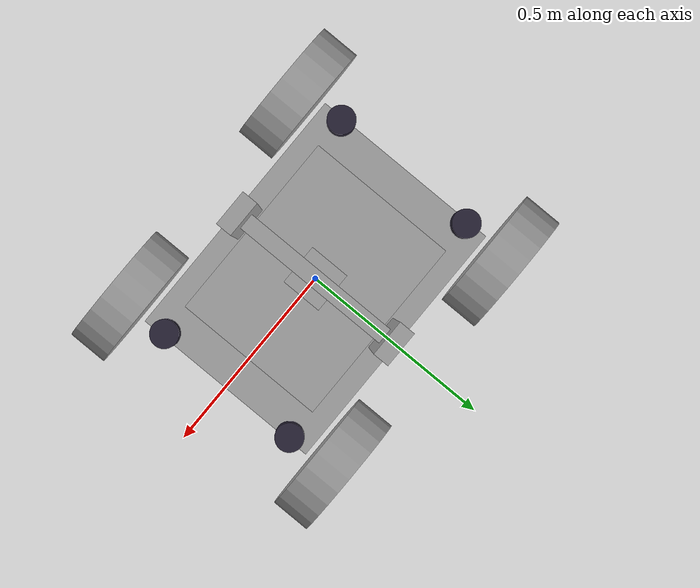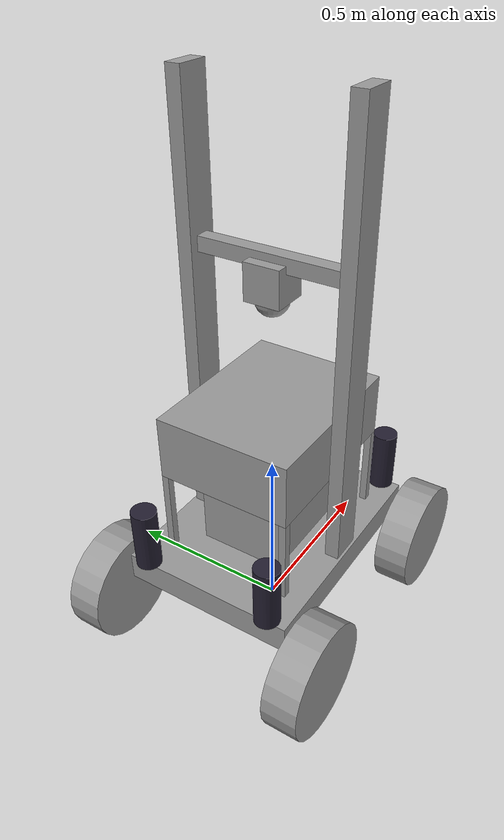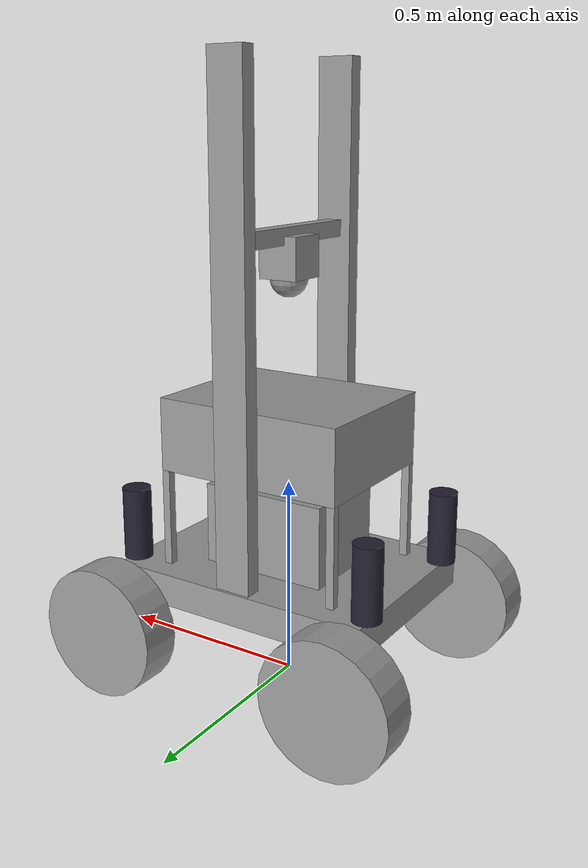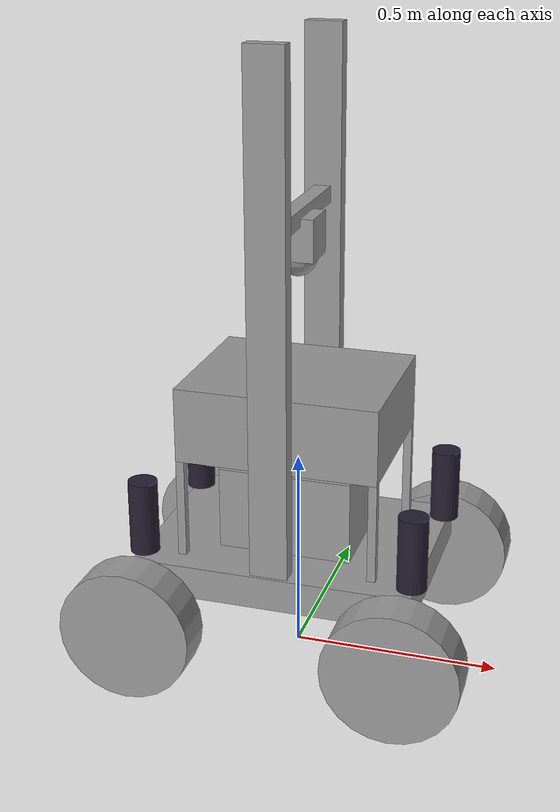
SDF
<?xml version='1.0'?>
<sdf version='1.7'>
  <model name='rover_v4'>

    <link name='link_base'>
      <inertial>
        <mass>53.064</mass>
        <inertia>
          <ixx>1.1118</ixx>
          <ixy>0</ixy>
          <ixz>0</ixz>
          <iyy>2.01334</iyy>
          <iyz>0</iyz>
          <izz>3.06854</izz>
        </inertia>
        <pose>0 0 0 0 -0 0</pose>
      </inertial>
      <pose>0 0 0.26 0 -0 0</pose>
      <gravity>1</gravity>
      <self_collide>0</self_collide>
      <kinematic>0</kinematic>
      <enable_wind>0</enable_wind>
      <visual name='ModelPreview_6::link_base::visual_8'>
        <pose>0.23 -0.18 0.16 0 -0 0</pose>
        <geometry>
          <box>
            <size>0.02 0.02 0.24</size>
          </box>
        </geometry>
        <material>
          <lighting>1</lighting>
          <script>
            <uri>file://media/materials/scripts/gazebo.material</uri>
            <name>Gazebo/Grey</name>
          </script>
          <shader type='pixel'>
            <normal_map>__default__</normal_map>
          </shader>
          <ambient>0.698 0.698 0.698 1</ambient>
          <diffuse>0.698 0.698 0.698 1</diffuse>
          <specular>0.01 0.01 0.01 1</specular>
          <emissive>0 0 0 1</emissive>
        </material>
        <transparency>0</transparency>
        <cast_shadows>1</cast_shadows>
      </visual>
      <visual name='ModelPreview_0::link_base::visual_3'>
        <pose>-0.325 -0.19 0.13 0 -0 0</pose>
        <geometry>
          <cylinder>
            <radius>0.035</radius>
            <length>0.18</length>
          </cylinder>
        </geometry>
        <material>
          <lighting>1</lighting>
          <script>
            <uri>file://media/materials/scripts/gazebo.material</uri>
            <name>Gazebo/Grey</name>
          </script>
          <shader type='pixel'>
            <normal_map>__default__</normal_map>
          </shader>
          <ambient>0.141 0.122 0.192 1</ambient>
          <diffuse>0.141 0.122 0.192 1</diffuse>
          <specular>0.01 0.01 0.01 1</specular>
          <emissive>0 0 0 1</emissive>
        </material>
        <transparency>0</transparency>
        <cast_shadows>1</cast_shadows>
      </visual>
      <visual name='ModelPreview_0::link_base::visual_4'>
        <pose>-0.325 0.19 0.13 0 -0 0</pose>
        <geometry>
          <cylinder>
            <radius>0.035</radius>
            <length>0.18</length>
          </cylinder>
        </geometry>
        <material>
          <lighting>1</lighting>
          <script>
            <uri>file://media/materials/scripts/gazebo.material</uri>
            <name>Gazebo/Grey</name>
          </script>
          <shader type='pixel'>
            <normal_map>__default__</normal_map>
          </shader>
          <ambient>0.141 0.122 0.192 1</ambient>
          <diffuse>0.141 0.122 0.192 1</diffuse>
          <specular>0.01 0.01 0.01 1</specular>
          <emissive>0 0 0 1</emissive>
        </material>
        <transparency>0</transparency>
        <cast_shadows>1</cast_shadows>
      </visual>
      <visual name='visual'>
        <pose>0 0 0 0 -0 0</pose>
        <geometry>
          <box>
            <size>0.67 0.495 0.08</size>
          </box>
        </geometry>
        <material>
          <lighting>1</lighting>
          <script>
            <uri>file://media/materials/scripts/gazebo.material</uri>
            <name>Gazebo/Grey</name>
          </script>
          <shader type='pixel'>
            <normal_map>__default__</normal_map>
          </shader>
          <ambient>0.698 0.698 0.698 1</ambient>
          <diffuse>0.7 0.7 0.7 1</diffuse>
          <specular>0.01 0.01 0.01 1</specular>
          <emissive>0 0 0 1</emissive>
        </material>
        <transparency>0</transparency>
        <cast_shadows>1</cast_shadows>
      </visual>
      <visual name='ModelPreview_9::link_base::visual_9'>
        <pose>0 0 0.14 0 -0 0</pose>
        <geometry>
          <box>
            <size>0.32 0.24 0.2</size>
          </box>
        </geometry>
        <material>
          <lighting>1</lighting>
          <script>
            <uri>file://media/materials/scripts/gazebo.material</uri>
            <name>Gazebo/Grey</name>
          </script>
          <shader type='pixel'>
            <normal_map>__default__</normal_map>
          </shader>
          <ambient>1 1 1 1</ambient>
          <diffuse>1 1 1 1</diffuse>
          <specular>0.01 0.01 0.01 1</specular>
          <emissive>0 0 0 1</emissive>
        </material>
        <transparency>0</transparency>
        <cast_shadows>1</cast_shadows>
      </visual>
      <visual name='ModelPreview_0::link_base::visual_1'>
        <pose>0.325 0.19 0.13 0 -0 0</pose>
        <geometry>
          <cylinder>
            <radius>0.035</radius>
            <length>0.18</length>
          </cylinder>
        </geometry>
        <material>
          <lighting>1</lighting>
          <script>
            <uri>file://media/materials/scripts/gazebo.material</uri>
            <name>Gazebo/Grey</name>
          </script>
          <shader type='pixel'>
            <normal_map>__default__</normal_map>
          </shader>
          <ambient>0.141 0.122 0.192 1</ambient>
          <diffuse>0.141 0.122 0.192 1</diffuse>
          <specular>0.01 0.01 0.01 1</specular>
          <emissive>0 0 0 1</emissive>
        </material>
        <transparency>0</transparency>
        <cast_shadows>1</cast_shadows>
      </visual>
      <visual name='ModelPreview_0::link_base::visual_2'>
        <pose>0.325 -0.19 0.13 0 -0 0</pose>
        <geometry>
          <cylinder>
            <radius>0.035</radius>
            <length>0.18</length>
          </cylinder>
        </geometry>
        <material>
          <lighting>1</lighting>
          <script>
            <uri>file://media/materials/scripts/gazebo.material</uri>
            <name>Gazebo/Grey</name>
          </script>
          <shader type='pixel'>
            <normal_map>__default__</normal_map>
          </shader>
          <ambient>0.141 0.122 0.192 1</ambient>
          <diffuse>0.141 0.122 0.192 1</diffuse>
          <specular>0.01 0.01 0.01 1</specular>
          <emissive>0 0 0 1</emissive>
        </material>
        <transparency>0</transparency>
        <cast_shadows>1</cast_shadows>
      </visual>
      <visual name='ModelPreview_6::link_base::visual_5'>
        <pose>0.23 0.18 0.16 0 -0 0</pose>
        <geometry>
          <box>
            <size>0.02 0.02 0.24</size>
          </box>
        </geometry>
        <material>
          <lighting>1</lighting>
          <script>
            <uri>file://media/materials/scripts/gazebo.material</uri>
            <name>Gazebo/Grey</name>
          </script>
          <shader type='pixel'>
            <normal_map>__default__</normal_map>
          </shader>
          <ambient>0.698 0.698 0.698 1</ambient>
          <diffuse>0.698 0.698 0.698 1</diffuse>
          <specular>0.01 0.01 0.01 1</specular>
          <emissive>0 0 0 1</emissive>
        </material>
        <transparency>0</transparency>
        <cast_shadows>1</cast_shadows>
      </visual>
      <visual name='ModelPreview_6::link_base::visual_6'>
        <pose>-0.23 0.18 0.16 0 -0 0</pose>
        <geometry>
          <box>
            <size>0.02 0.02 0.24</size>
          </box>
        </geometry>
        <material>
          <lighting>1</lighting>
          <script>
            <uri>file://media/materials/scripts/gazebo.material</uri>
            <name>Gazebo/Grey</name>
          </script>
          <shader type='pixel'>
            <normal_map>__default__</normal_map>
          </shader>
          <ambient>0.698 0.698 0.698 1</ambient>
          <diffuse>0.698 0.698 0.698 1</diffuse>
          <specular>0.01 0.01 0.01 1</specular>
          <emissive>0 0 0 1</emissive>
        </material>
        <transparency>0</transparency>
        <cast_shadows>1</cast_shadows>
      </visual>
      <visual name='ModelPreview_6::link_base::visual_7'>
        <pose>-0.23 -0.18 0.16 0 -0 0</pose>
        <geometry>
          <box>
            <size>0.02 0.02 0.24</size>
          </box>
        </geometry>
        <material>
          <lighting>1</lighting>
          <script>
            <uri>file://media/materials/scripts/gazebo.material</uri>
            <name>Gazebo/Grey</name>
          </script>
          <shader type='pixel'>
            <normal_map>__default__</normal_map>
          </shader>
          <ambient>0.698 0.698 0.698 1</ambient>
          <diffuse>0.698 0.698 0.698 1</diffuse>
          <specular>0.01 0.01 0.01 1</specular>
          <emissive>0 0 0 1</emissive>
        </material>
        <transparency>0</transparency>
        <cast_shadows>1</cast_shadows>
      </visual>
      <collision name='collision'>
        <laser_retro>0</laser_retro>
        <max_contacts>10</max_contacts>
        <pose>0 0 0 0 -0 0</pose>
        <geometry>
          <box>
            <size>0.67 0.495 0.08</size>
          </box>
        </geometry>
        <surface>
          <friction>
            <ode>
              <mu>1</mu>
              <mu2>1</mu2>
              <fdir1>0 0 0</fdir1>
              <slip1>0</slip1>
              <slip2>0</slip2>
            </ode>
            <torsional>
              <coefficient>1</coefficient>
              <patch_radius>0</patch_radius>
              <surface_radius>0</surface_radius>
              <use_patch_radius>1</use_patch_radius>
              <ode>
                <slip>0</slip>
              </ode>
            </torsional>
          </friction>
          <bounce>
            <restitution_coefficient>0</restitution_coefficient>
            <threshold>1e+06</threshold>
          </bounce>
          <contact>
            <collide_without_contact>0</collide_without_contact>
            <collide_without_contact_bitmask>1</collide_without_contact_bitmask>
            <collide_bitmask>1</collide_bitmask>
            <ode>
              <soft_cfm>0</soft_cfm>
              <soft_erp>0.2</soft_erp>
              <kp>1e+13</kp>
              <kd>1</kd>
              <max_vel>0.01</max_vel>
              <min_depth>0</min_depth>
            </ode>
            <bullet>
              <split_impulse>1</split_impulse>
              <split_impulse_penetration_threshold>-0.01</split_impulse_penetration_threshold>
              <soft_cfm>0</soft_cfm>
              <soft_erp>0.2</soft_erp>
              <kp>1e+13</kp>
              <kd>1</kd>
            </bullet>
          </contact>
        </surface>
      </collision>
    </link>
    <link name='link_front_left_wheel'>
      <inertial>
        <mass>5.62973</mass>
        <inertia>
          <ixx>0.0407217</ixx>
          <ixy>0</ixy>
          <ixz>0</ixz>
          <iyy>0.0407217</iyy>
          <iyz>0</iyz>
          <izz>0.0720606</izz>
        </inertia>
        <pose>0 0 0 0 -0 0</pose>
      </inertial>
      <pose>0.315 0.315 0.16 1.571 -0 0</pose>
      <gravity>1</gravity>
      <self_collide>0</self_collide>
      <kinematic>0</kinematic>
      <enable_wind>0</enable_wind>
      <visual name='visual'>
        <pose>0 0 0 0 -0 0</pose>
        <geometry>
          <cylinder>
            <radius>0.16</radius>
            <length>0.1</length>
          </cylinder>
        </geometry>
        <material>
          <lighting>1</lighting>
          <script>
            <uri>file://media/materials/scripts/gazebo.material</uri>
            <name>Gazebo/Grey</name>
          </script>
          <shader type='pixel'>
            <normal_map>__default__</normal_map>
          </shader>
          <ambient>0.298 0.298 0.298 1</ambient>
          <diffuse>0.529 0.537 0.522 1</diffuse>
          <specular>0.01 0.01 0.01 1</specular>
          <emissive>0 0 0 1</emissive>
        </material>
        <transparency>0</transparency>
        <cast_shadows>1</cast_shadows>
      </visual>
      <collision name='collision'>
        <laser_retro>0</laser_retro>
        <max_contacts>10</max_contacts>
        <pose>0 0 0 0 -0 0</pose>
        <geometry>
          <cylinder>
            <radius>0.16</radius>
            <length>0.1</length>
          </cylinder>
        </geometry>
        <surface>
          <friction>
            <ode>
              <mu>1</mu>
              <mu2>1</mu2>
              <fdir1>0 0 0</fdir1>
              <slip1>0</slip1>
              <slip2>0</slip2>
            </ode>
            <torsional>
              <coefficient>1</coefficient>
              <patch_radius>0</patch_radius>
              <surface_radius>0</surface_radius>
              <use_patch_radius>1</use_patch_radius>
              <ode>
                <slip>0</slip>
              </ode>
            </torsional>
          </friction>
          <bounce>
            <restitution_coefficient>0</restitution_coefficient>
            <threshold>1e+06</threshold>
          </bounce>
          <contact>
            <collide_without_contact>0</collide_without_contact>
            <collide_without_contact_bitmask>1</collide_without_contact_bitmask>
            <collide_bitmask>1</collide_bitmask>
            <ode>
              <soft_cfm>0</soft_cfm>
              <soft_erp>0.2</soft_erp>
              <kp>1e+13</kp>
              <kd>1</kd>
              <max_vel>0.01</max_vel>
              <min_depth>0</min_depth>
            </ode>
            <bullet>
              <split_impulse>1</split_impulse>
              <split_impulse_penetration_threshold>-0.01</split_impulse_penetration_threshold>
              <soft_cfm>0</soft_cfm>
              <soft_erp>0.2</soft_erp>
              <kp>1e+13</kp>
              <kd>1</kd>
            </bullet>
          </contact>
        </surface>
      </collision>
    </link>
    <link name='link_back_left_wheel'>
      <inertial>
        <mass>5.62973</mass>
        <inertia>
          <ixx>0.0407217</ixx>
          <ixy>0</ixy>
          <ixz>0</ixz>
          <iyy>0.0407217</iyy>
          <iyz>0</iyz>
          <izz>0.0720606</izz>
        </inertia>
        <pose>0 0 0 0 -0 0</pose>
      </inertial>
      <pose>-0.315 0.315 0.16 1.571 -0 0</pose>
      <gravity>1</gravity>
      <self_collide>0</self_collide>
      <kinematic>0</kinematic>
      <enable_wind>0</enable_wind>
      <visual name='visual'>
        <pose>0 0 0 0 -0 0</pose>
        <geometry>
          <cylinder>
            <radius>0.16</radius>
            <length>0.1</length>
          </cylinder>
        </geometry>
        <material>
          <lighting>1</lighting>
          <script>
            <uri>file://media/materials/scripts/gazebo.material</uri>
            <name>Gazebo/Grey</name>
          </script>
          <shader type='pixel'>
            <normal_map>__default__</normal_map>
          </shader>
          <ambient>0.298 0.298 0.298 1</ambient>
          <diffuse>0.529 0.537 0.522 1</diffuse>
          <specular>0.01 0.01 0.01 1</specular>
          <emissive>0 0 0 1</emissive>
        </material>
        <transparency>0</transparency>
        <cast_shadows>1</cast_shadows>
      </visual>
      <collision name='collision'>
        <laser_retro>0</laser_retro>
        <max_contacts>10</max_contacts>
        <pose>0 0 0 0 -0 0</pose>
        <geometry>
          <cylinder>
            <radius>0.16</radius>
            <length>0.1</length>
          </cylinder>
        </geometry>
        <surface>
          <friction>
            <ode>
              <mu>1</mu>
              <mu2>1</mu2>
              <fdir1>0 0 0</fdir1>
              <slip1>0</slip1>
              <slip2>0</slip2>
            </ode>
            <torsional>
              <coefficient>1</coefficient>
              <patch_radius>0</patch_radius>
              <surface_radius>0</surface_radius>
              <use_patch_radius>1</use_patch_radius>
              <ode>
                <slip>0</slip>
              </ode>
            </torsional>
          </friction>
          <bounce>
            <restitution_coefficient>0</restitution_coefficient>
            <threshold>1e+06</threshold>
          </bounce>
          <contact>
            <collide_without_contact>0</collide_without_contact>
            <collide_without_contact_bitmask>1</collide_without_contact_bitmask>
            <collide_bitmask>1</collide_bitmask>
            <ode>
              <soft_cfm>0</soft_cfm>
              <soft_erp>0.2</soft_erp>
              <kp>1e+13</kp>
              <kd>1</kd>
              <max_vel>0.01</max_vel>
              <min_depth>0</min_depth>
            </ode>
            <bullet>
              <split_impulse>1</split_impulse>
              <split_impulse_penetration_threshold>-0.01</split_impulse_penetration_threshold>
              <soft_cfm>0</soft_cfm>
              <soft_erp>0.2</soft_erp>
              <kp>1e+13</kp>
              <kd>1</kd>
            </bullet>
          </contact>
        </surface>
      </collision>
    </link>
    <link name='link_front_right_wheel'>
      <inertial>
        <mass>5.62973</mass>
        <inertia>
          <ixx>0.0407217</ixx>
          <ixy>0</ixy>
          <ixz>0</ixz>
          <iyy>0.0407217</iyy>
          <iyz>0</iyz>
          <izz>0.0720606</izz>
        </inertia>
        <pose>0 0 0 0 -0 0</pose>
      </inertial>
      <pose>0.315 -0.315 0.16 1.571 -0 0</pose>
      <gravity>1</gravity>
      <self_collide>0</self_collide>
      <kinematic>0</kinematic>
      <enable_wind>0</enable_wind>
      <visual name='visual'>
        <pose>0 0 0 0 -0 0</pose>
        <geometry>
          <cylinder>
            <radius>0.16</radius>
            <length>0.1</length>
          </cylinder>
        </geometry>
        <material>
          <lighting>1</lighting>
          <script>
            <uri>file://media/materials/scripts/gazebo.material</uri>
            <name>Gazebo/Grey</name>
          </script>
          <shader type='pixel'>
            <normal_map>__default__</normal_map>
          </shader>
          <ambient>0.298 0.298 0.298 1</ambient>
          <diffuse>0.529 0.537 0.522 1</diffuse>
          <specular>0.01 0.01 0.01 1</specular>
          <emissive>0 0 0 1</emissive>
        </material>
        <transparency>0</transparency>
        <cast_shadows>1</cast_shadows>
      </visual>
      <collision name='collision'>
        <laser_retro>0</laser_retro>
        <max_contacts>10</max_contacts>
        <pose>0 0 0 0 -0 0</pose>
        <geometry>
          <cylinder>
            <radius>0.16</radius>
            <length>0.1</length>
          </cylinder>
        </geometry>
        <surface>
          <friction>
            <ode>
              <mu>1</mu>
              <mu2>1</mu2>
              <fdir1>0 0 0</fdir1>
              <slip1>0</slip1>
              <slip2>0</slip2>
            </ode>
            <torsional>
              <coefficient>1</coefficient>
              <patch_radius>0</patch_radius>
              <surface_radius>0</surface_radius>
              <use_patch_radius>1</use_patch_radius>
              <ode>
                <slip>0</slip>
              </ode>
            </torsional>
          </friction>
          <bounce>
            <restitution_coefficient>0</restitution_coefficient>
            <threshold>1e+06</threshold>
          </bounce>
          <contact>
            <collide_without_contact>0</collide_without_contact>
            <collide_without_contact_bitmask>1</collide_without_contact_bitmask>
            <collide_bitmask>1</collide_bitmask>
            <ode>
              <soft_cfm>0</soft_cfm>
              <soft_erp>0.2</soft_erp>
              <kp>1e+13</kp>
              <kd>1</kd>
              <max_vel>0.01</max_vel>
              <min_depth>0</min_depth>
            </ode>
            <bullet>
              <split_impulse>1</split_impulse>
              <split_impulse_penetration_threshold>-0.01</split_impulse_penetration_threshold>
              <soft_cfm>0</soft_cfm>
              <soft_erp>0.2</soft_erp>
              <kp>1e+13</kp>
              <kd>1</kd>
            </bullet>
          </contact>
        </surface>
      </collision>
    </link>
    <link name='link_back_right_wheel'>
      <inertial>
        <mass>5.62973</mass>
        <inertia>
          <ixx>0.0407217</ixx>
          <ixy>0</ixy>
          <ixz>0</ixz>
          <iyy>0.0407217</iyy>
          <iyz>0</iyz>
          <izz>0.0720606</izz>
        </inertia>
        <pose>0 0 0 0 -0 0</pose>
      </inertial>
      <pose>-0.315 -0.315 0.16 1.571 -0 0</pose>
      <gravity>1</gravity>
      <self_collide>0</self_collide>
      <kinematic>0</kinematic>
      <enable_wind>0</enable_wind>
      <visual name='visual'>
        <pose>0 0 0 0 -0 0</pose>
        <geometry>
          <cylinder>
            <radius>0.16</radius>
            <length>0.1</length>
          </cylinder>
        </geometry>
        <material>
          <lighting>1</lighting>
          <script>
            <uri>file://media/materials/scripts/gazebo.material</uri>
            <name>Gazebo/Grey</name>
          </script>
          <shader type='pixel'>
            <normal_map>__default__</normal_map>
          </shader>
          <ambient>0.298 0.298 0.298 1</ambient>
          <diffuse>0.529 0.537 0.522 1</diffuse>
          <specular>0.01 0.01 0.01 1</specular>
          <emissive>0 0 0 1</emissive>
        </material>
        <transparency>0</transparency>
        <cast_shadows>1</cast_shadows>
      </visual>
      <collision name='collision'>
        <laser_retro>0</laser_retro>
        <max_contacts>10</max_contacts>
        <pose>0 0 0 0 -0 0</pose>
        <geometry>
          <cylinder>
            <radius>0.16</radius>
            <length>0.1</length>
          </cylinder>
        </geometry>
        <surface>
          <friction>
            <ode>
              <mu>1</mu>
              <mu2>1</mu2>
              <fdir1>0 0 0</fdir1>
              <slip1>0</slip1>
              <slip2>0</slip2>
            </ode>
            <torsional>
              <coefficient>1</coefficient>
              <patch_radius>0</patch_radius>
              <surface_radius>0</surface_radius>
              <use_patch_radius>1</use_patch_radius>
              <ode>
                <slip>0</slip>
              </ode>
            </torsional>
          </friction>
          <bounce>
            <restitution_coefficient>0</restitution_coefficient>
            <threshold>1e+06</threshold>
          </bounce>
          <contact>
            <collide_without_contact>0</collide_without_contact>
            <collide_without_contact_bitmask>1</collide_without_contact_bitmask>
            <collide_bitmask>1</collide_bitmask>
            <ode>
              <soft_cfm>0</soft_cfm>
              <soft_erp>0.2</soft_erp>
              <kp>1e+13</kp>
              <kd>1</kd>
              <max_vel>0.01</max_vel>
              <min_depth>0</min_depth>
            </ode>
            <bullet>
              <split_impulse>1</split_impulse>
              <split_impulse_penetration_threshold>-0.01</split_impulse_penetration_threshold>
              <soft_cfm>0</soft_cfm>
              <soft_erp>0.2</soft_erp>
              <kp>1e+13</kp>
              <kd>1</kd>
            </bullet>
          </contact>
        </surface>
      </collision>
    </link>
    <link name='link_controller_box'>
      <inertial>
        <mass>3.2832</mass>
        <inertia>
          <ixx>0.0483725</ixx>
          <ixy>0</ixy>
          <ixz>0</ixz>
          <iyy>0.0719021</iyy>
          <iyz>0</iyz>
          <izz>0.102545</izz>
        </inertia>
        <pose>0 0 0 0 -0 0</pose>
      </inertial>
      <pose>0 0 0.63 0 -0 0</pose>
      <gravity>1</gravity>
      <self_collide>0</self_collide>
      <kinematic>0</kinematic>
      <enable_wind>0</enable_wind>
      <visual name='visual'>
        <pose>0 0 0 0 -0 0</pose>
        <geometry>
          <box>
            <size>0.48 0.38 0.18</size>
          </box>
        </geometry>
        <material>
          <lighting>1</lighting>
          <script>
            <uri>file://media/materials/scripts/gazebo.material</uri>
            <name>Gazebo/Grey</name>
          </script>
          <shader type='pixel'>
            <normal_map>__default__</normal_map>
          </shader>
          <ambient>0.698 0.698 0.698 1</ambient>
          <diffuse>0.7 0.7 0.7 1</diffuse>
          <specular>0.01 0.01 0.01 1</specular>
          <emissive>0 0 0 1</emissive>
        </material>
        <transparency>0</transparency>
        <cast_shadows>1</cast_shadows>
      </visual>
      <collision name='collision'>
        <laser_retro>0</laser_retro>
        <max_contacts>10</max_contacts>
        <pose>0 0 0 0 -0 0</pose>
        <geometry>
          <box>
            <size>0.48 0.38 0.18</size>
          </box>
        </geometry>
        <surface>
          <friction>
            <ode>
              <mu>1</mu>
              <mu2>1</mu2>
              <fdir1>0 0 0</fdir1>
              <slip1>0</slip1>
              <slip2>0</slip2>
            </ode>
            <torsional>
              <coefficient>1</coefficient>
              <patch_radius>0</patch_radius>
              <surface_radius>0</surface_radius>
              <use_patch_radius>1</use_patch_radius>
              <ode>
                <slip>0</slip>
              </ode>
            </torsional>
          </friction>
          <bounce>
            <restitution_coefficient>0</restitution_coefficient>
            <threshold>1e+06</threshold>
          </bounce>
          <contact>
            <collide_without_contact>0</collide_without_contact>
            <collide_without_contact_bitmask>1</collide_without_contact_bitmask>
            <collide_bitmask>1</collide_bitmask>
            <ode>
              <soft_cfm>0</soft_cfm>
              <soft_erp>0.2</soft_erp>
              <kp>1e+13</kp>
              <kd>1</kd>
              <max_vel>0.01</max_vel>
              <min_depth>0</min_depth>
            </ode>
            <bullet>
              <split_impulse>1</split_impulse>
              <split_impulse_penetration_threshold>-0.01</split_impulse_penetration_threshold>
              <soft_cfm>0</soft_cfm>
              <soft_erp>0.2</soft_erp>
              <kp>1e+13</kp>
              <kd>1</kd>
            </bullet>
          </contact>
        </surface>
      </collision>
    </link>
    <link name='link_lidar_side_supports'>
      <inertial>
        <mass>3.0024</mass>
        <inertia>
          <ixx>0.360388</ixx>
          <ixy>0</ixy>
          <ixz>0</ixz>
          <iyy>0.360388</iyy>
          <iyz>0</iyz>
          <izz>0.00020016</izz>
        </inertia>
        <pose>0 0 0 0 -0 0</pose>
      </inertial>
      <pose>-0 0 0.85 0 -0 0</pose>
      <gravity>1</gravity>
      <self_collide>0</self_collide>
      <kinematic>0</kinematic>
      <enable_wind>0</enable_wind>

      <visual name='ModelPreview_15::link_lidar_side_supports::visual_1'>
        <pose>0 -0.22 0.05 0 -0 0</pose>
        <geometry>
          <box>
            <size>0.09 0.04 1.2</size>
          </box>
        </geometry>
        <material>
          <lighting>1</lighting>
          <script>
            <uri>file://media/materials/scripts/gazebo.material</uri>
            <name>Gazebo/Grey</name>
          </script>
          <shader type='pixel'>
            <normal_map>__default__</normal_map>
          </shader>
          <ambient>0.698 0.698 0.698 1</ambient>
          <diffuse>0.7 0.7 0.7 1</diffuse>
          <specular>0.01 0.01 0.01 1</specular>
          <emissive>0 0 0 1</emissive>
        </material>
        <transparency>0</transparency>
        <cast_shadows>1</cast_shadows>
      </visual>
      <visual name='visual'>
        <pose>0 0.22 0.05 0 -0 0</pose>
        <geometry>
          <box>
            <size>0.09 0.04 1.2</size>
          </box>
        </geometry>
        <material>
          <lighting>1</lighting>
          <script>
            <uri>file://media/materials/scripts/gazebo.material</uri>
            <name>Gazebo/Grey</name>
          </script>
          <shader type='pixel'>
            <normal_map>__default__</normal_map>
          </shader>
          <ambient>0.698 0.698 0.698 1</ambient>
          <diffuse>0.7 0.7 0.7 1</diffuse>
          <specular>0.01 0.01 0.01 1</specular>
          <emissive>0 0 0 1</emissive>
        </material>
        <transparency>0</transparency>
        <cast_shadows>1</cast_shadows>
      </visual>

      <collision name='collision_1'>
        <laser_retro>0</laser_retro>
        <max_contacts>10</max_contacts>
        <pose>0 -0.2 0.05 0 -0 0</pose>
        <geometry>
          <box>
            <size>0.09 0.04 1.2</size>
          </box>
        </geometry>
        <surface>
          <friction>
            <ode>
              <mu>1</mu>
              <mu2>1</mu2>
              <fdir1>0 0 0</fdir1>
              <slip1>0</slip1>
              <slip2>0</slip2>
            </ode>
            <torsional>
              <coefficient>1</coefficient>
              <patch_radius>0</patch_radius>
              <surface_radius>0</surface_radius>
              <use_patch_radius>1</use_patch_radius>
              <ode>
                <slip>0</slip>
              </ode>
            </torsional>
          </friction>
          <bounce>
            <restitution_coefficient>0</restitution_coefficient>
            <threshold>1e+06</threshold>
          </bounce>
          <contact>
            <collide_without_contact>0</collide_without_contact>
            <collide_without_contact_bitmask>1</collide_without_contact_bitmask>
            <collide_bitmask>1</collide_bitmask>
            <ode>
              <soft_cfm>0</soft_cfm>
              <soft_erp>0.2</soft_erp>
              <kp>1e+13</kp>
              <kd>1</kd>
              <max_vel>0.01</max_vel>
              <min_depth>0</min_depth>
            </ode>
            <bullet>
              <split_impulse>1</split_impulse>
              <split_impulse_penetration_threshold>-0.01</split_impulse_penetration_threshold>
              <soft_cfm>0</soft_cfm>
              <soft_erp>0.2</soft_erp>
              <kp>1e+13</kp>
              <kd>1</kd>
            </bullet>
          </contact>
        </surface>
      </collision>
      <collision name='collision'>
        <laser_retro>0</laser_retro>
        <max_contacts>10</max_contacts>
        <pose>0 0.2 0.05 0 -0 0</pose>
        <geometry>
          <box>
            <size>0.09 0.04 1.2</size>
          </box>
        </geometry>
        <surface>
          <friction>
            <ode>
              <mu>1</mu>
              <mu2>1</mu2>
              <fdir1>0 0 0</fdir1>
              <slip1>0</slip1>
              <slip2>0</slip2>
            </ode>
            <torsional>
              <coefficient>1</coefficient>
              <patch_radius>0</patch_radius>
              <surface_radius>0</surface_radius>
              <use_patch_radius>1</use_patch_radius>
              <ode>
                <slip>0</slip>
              </ode>
            </torsional>
          </friction>
          <bounce>
            <restitution_coefficient>0</restitution_coefficient>
            <threshold>1e+06</threshold>
          </bounce>
          <contact>
            <collide_without_contact>0</collide_without_contact>
            <collide_without_contact_bitmask>1</collide_without_contact_bitmask>
            <collide_bitmask>1</collide_bitmask>
            <ode>
              <soft_cfm>0</soft_cfm>
              <soft_erp>0.2</soft_erp>
              <kp>1e+13</kp>
              <kd>1</kd>
              <max_vel>0.01</max_vel>
              <min_depth>0</min_depth>
            </ode>
            <bullet>
              <split_impulse>1</split_impulse>
              <split_impulse_penetration_threshold>-0.01</split_impulse_penetration_threshold>
              <soft_cfm>0</soft_cfm>
              <soft_erp>0.2</soft_erp>
              <kp>1e+13</kp>
              <kd>1</kd>
            </bullet>
          </contact>
        </surface>
      </collision>
    </link>
    <link name='link_lidar'>
      <inertial>
        <mass>0.142375</mass>
        <inertia>
          <ixx>0.00011532</ixx>
          <ixy>0</ixy>
          <ixz>0</ixz>
          <iyy>0.00011532</iyy>
          <iyz>0</iyz>
          <izz>0.00011532</izz>
        </inertia>
        <pose>0 0 0 0 -0 0</pose>
      </inertial>
      <pose>-0 0 1. 0 -0 0</pose>
      <gravity>1</gravity>
      <self_collide>0</self_collide>
      <kinematic>0</kinematic>
      <enable_wind>0</enable_wind>
      <visual name='visual'>
        <pose>0 0 0 0 -0 0</pose>
        <geometry>
          <sphere>
            <radius>0.045</radius>
          </sphere>
        </geometry>
        <material>
          <lighting>1</lighting>
          <script>
            <uri>file://media/materials/scripts/gazebo.material</uri>
            <name>Gazebo/Grey</name>
          </script>
          <shader type='pixel'>
            <normal_map>__default__</normal_map>
          </shader>
          <ambient>0 0 0 1</ambient>
          <diffuse>0 0 0 1</diffuse>
          <specular>0.01 0.01 0.01 1</specular>
          <emissive>0 0 0 1</emissive>
        </material>
        <transparency>0</transparency>
        <cast_shadows>1</cast_shadows>
      </visual>
      <visual name='visual_3'>
        <pose>0 0 0.05 0 -0 0</pose>
        <geometry>
          <box>
            <size>0.1 0.1 0.1</size>
          </box>
        </geometry>
        <material>
          <lighting>1</lighting>
          <script>
            <uri>file://media/materials/scripts/gazebo.material</uri>
            <name>Gazebo/Grey</name>
          </script>
          <shader type='pixel'>
            <normal_map>__default__</normal_map>
          </shader>
          <ambient>0.467 0.463 0.482 1</ambient>
          <diffuse>0.965 0.961 0.957 1</diffuse>
          <specular>0.01 0.01 0.01 1</specular>
          <emissive>0 0 0 1</emissive>
        </material>
        <transparency>0</transparency>
        <cast_shadows>1</cast_shadows>
      </visual>
      <visual name='visual_2'>
        <pose>0 0 0.1 0 -0 0</pose>
        <geometry>
          <box>
            <size>0.04 0.42 0.04</size>
          </box>
        </geometry>
        <material>
          <lighting>1</lighting>
          <script>
            <uri>file://media/materials/scripts/gazebo.material</uri>
            <name>Gazebo/Grey</name>
          </script>
          <shader type='pixel'>
            <normal_map>__default__</normal_map>
          </shader>
          <ambient>0.698 0.698 0.698 1</ambient>
          <diffuse>0.7 0.7 0.7 1</diffuse>
          <specular>0.01 0.01 0.01 1</specular>
          <emissive>0 0 0 1</emissive>
        </material>
        <transparency>0</transparency>
        <cast_shadows>1</cast_shadows>
      </visual>
      <collision name='collision'>
        <laser_retro>0</laser_retro>
        <max_contacts>10</max_contacts>
        <pose>0 0 0 0 -0 0</pose>
        <geometry>
          <sphere>
            <radius>0.045</radius>
          </sphere>
        </geometry>
        <surface>
          <friction>
            <ode>
              <mu>1</mu>
              <mu2>1</mu2>
              <fdir1>0 0 0</fdir1>
              <slip1>0</slip1>
              <slip2>0</slip2>
            </ode>
            <torsional>
              <coefficient>1</coefficient>
              <patch_radius>0</patch_radius>
              <surface_radius>0</surface_radius>
              <use_patch_radius>1</use_patch_radius>
              <ode>
                <slip>0</slip>
              </ode>
            </torsional>
          </friction>
          <bounce>
            <restitution_coefficient>0</restitution_coefficient>
            <threshold>1e+06</threshold>
          </bounce>
          <contact>
            <collide_without_contact>0</collide_without_contact>
            <collide_without_contact_bitmask>1</collide_without_contact_bitmask>
            <collide_bitmask>1</collide_bitmask>
            <ode>
              <soft_cfm>0</soft_cfm>
              <soft_erp>0.2</soft_erp>
              <kp>1e+13</kp>
              <kd>1</kd>
              <max_vel>0.01</max_vel>
              <min_depth>0</min_depth>
            </ode>
            <bullet>
              <split_impulse>1</split_impulse>
              <split_impulse_penetration_threshold>-0.01</split_impulse_penetration_threshold>
              <soft_cfm>0</soft_cfm>
              <soft_erp>0.2</soft_erp>
              <kp>1e+13</kp>
              <kd>1</kd>
            </bullet>
          </contact>
        </surface>
      </collision>
      <collision name='collision_3'>
        <laser_retro>0</laser_retro>
        <max_contacts>10</max_contacts>
        <pose>0 0 0.05 0 -0 0</pose>
        <geometry>
          <box>
            <size>0.1 0.1 0.1</size>
          </box>
        </geometry>
        <surface>
          <friction>
            <ode>
              <mu>1</mu>
              <mu2>1</mu2>
              <fdir1>0 0 0</fdir1>
              <slip1>0</slip1>
              <slip2>0</slip2>
            </ode>
            <torsional>
              <coefficient>1</coefficient>
              <patch_radius>0</patch_radius>
              <surface_radius>0</surface_radius>
              <use_patch_radius>1</use_patch_radius>
              <ode>
                <slip>0</slip>
              </ode>
            </torsional>
          </friction>
          <bounce>
            <restitution_coefficient>0</restitution_coefficient>
            <threshold>1e+06</threshold>
          </bounce>
          <contact>
            <collide_without_contact>0</collide_without_contact>
            <collide_without_contact_bitmask>1</collide_without_contact_bitmask>
            <collide_bitmask>1</collide_bitmask>
            <ode>
              <soft_cfm>0</soft_cfm>
              <soft_erp>0.2</soft_erp>
              <kp>1e+13</kp>
              <kd>1</kd>
              <max_vel>0.01</max_vel>
              <min_depth>0</min_depth>
            </ode>
            <bullet>
              <split_impulse>1</split_impulse>
              <split_impulse_penetration_threshold>-0.01</split_impulse_penetration_threshold>
              <soft_cfm>0</soft_cfm>
              <soft_erp>0.2</soft_erp>
              <kp>1e+13</kp>
              <kd>1</kd>
            </bullet>
          </contact>
        </surface>
      </collision>
      <collision name='collision_2'>
        <laser_retro>0</laser_retro>
        <max_contacts>10</max_contacts>
        <pose>0 0 0.09 0 -0 0</pose>
        <geometry>
          <box>
            <size>0.02 0.38 0.02</size>
          </box>
        </geometry>
        <surface>
          <friction>
            <ode>
              <mu>1</mu>
              <mu2>1</mu2>
              <fdir1>0 0 0</fdir1>
              <slip1>0</slip1>
              <slip2>0</slip2>
            </ode>
            <torsional>
              <coefficient>1</coefficient>
              <patch_radius>0</patch_radius>
              <surface_radius>0</surface_radius>
              <use_patch_radius>1</use_patch_radius>
              <ode>
                <slip>0</slip>
              </ode>
            </torsional>
          </friction>
          <bounce>
            <restitution_coefficient>0</restitution_coefficient>
            <threshold>1e+06</threshold>
          </bounce>
          <contact>
            <collide_without_contact>0</collide_without_contact>
            <collide_without_contact_bitmask>1</collide_without_contact_bitmask>
            <collide_bitmask>1</collide_bitmask>
            <ode>
              <soft_cfm>0</soft_cfm>
              <soft_erp>0.2</soft_erp>
              <kp>1e+13</kp>
              <kd>1</kd>
              <max_vel>0.01</max_vel>
              <min_depth>0</min_depth>
            </ode>
            <bullet>
              <split_impulse>1</split_impulse>
              <split_impulse_penetration_threshold>-0.01</split_impulse_penetration_threshold>
              <soft_cfm>0</soft_cfm>
              <soft_erp>0.2</soft_erp>
              <kp>1e+13</kp>
              <kd>1</kd>
            </bullet>
          </contact>
        </surface>
      </collision>
    </link>
    <joint name='Joint_back_left_wheel' type='revolute'>
      <parent>link_base</parent>
      <child>link_back_left_wheel</child>
      <pose>0 0 0 0 -0 0</pose>
      <axis>
        <xyz>0 0 1</xyz>
        <limit>
          <lower>-1.79769e+308</lower>
          <upper>1.79769e+308</upper>
          <effort>-1</effort>
          <velocity>-1</velocity>
        </limit>
        <dynamics>
          <spring_reference>0</spring_reference>
          <spring_stiffness>0</spring_stiffness>
          <damping>0</damping>
          <friction>0</friction>
        </dynamics>
      </axis>
      <physics>
        <ode>
          <limit>
            <cfm>0</cfm>
            <erp>0.2</erp>
          </limit>
          <suspension>
            <cfm>0</cfm>
            <erp>0.2</erp>
          </suspension>
        </ode>
      </physics>
    </joint>
    <joint name='Joint_back_right_wheel' type='revolute'>
      <parent>link_base</parent>
      <child>link_back_right_wheel</child>
      <pose>0 0 0 0 -0 0</pose>
      <axis>
        <xyz>0 0 1</xyz>
        <limit>
          <lower>-1.79769e+308</lower>
          <upper>1.79769e+308</upper>
          <effort>-1</effort>
          <velocity>-1</velocity>
        </limit>
        <dynamics>
          <spring_reference>0</spring_reference>
          <spring_stiffness>0</spring_stiffness>
          <damping>0</damping>
          <friction>0</friction>
        </dynamics>
      </axis>
      <physics>
        <ode>
          <limit>
            <cfm>0</cfm>
            <erp>0.2</erp>
          </limit>
          <suspension>
            <cfm>0</cfm>
            <erp>0.2</erp>
          </suspension>
        </ode>
      </physics>
    </joint>
    <joint name='Joint_front_right_wheel' type='revolute'>
      <parent>link_base</parent>
      <child>link_front_right_wheel</child>
      <pose>0 0 0 0 -0 0</pose>
      <axis>
        <xyz>0 0 1</xyz>
        <limit>
          <lower>-1.79769e+308</lower>
          <upper>1.79769e+308</upper>
          <effort>-1</effort>
          <velocity>-1</velocity>
        </limit>
        <dynamics>
          <spring_reference>0</spring_reference>
          <spring_stiffness>0</spring_stiffness>
          <damping>0</damping>
          <friction>0</friction>
        </dynamics>
      </axis>
      <physics>
        <ode>
          <limit>
            <cfm>0</cfm>
            <erp>0.2</erp>
          </limit>
          <suspension>
            <cfm>0</cfm>
            <erp>0.2</erp>
          </suspension>
        </ode>
      </physics>
    </joint>
    <joint name='Joint_front_left_wheel' type='revolute'>
      <parent>link_base</parent>
      <child>link_front_left_wheel</child>
      <pose>0 0 0 0 -0 0</pose>
      <axis>
        <xyz>0 0 1</xyz>
        <limit>
          <lower>-1.79769e+308</lower>
          <upper>1.79769e+308</upper>
          <effort>-1</effort>
          <velocity>-1</velocity>
        </limit>
        <dynamics>
          <spring_reference>0</spring_reference>
          <spring_stiffness>0</spring_stiffness>
          <damping>0</damping>
          <friction>0</friction>
        </dynamics>
      </axis>
      <physics>
        <ode>
          <limit>
            <cfm>0</cfm>
            <erp>0.2</erp>
          </limit>
          <suspension>
            <cfm>0</cfm>
            <erp>0.2</erp>
          </suspension>
        </ode>
      </physics>
    </joint>
    <joint name='Joint_controller_box' type='fixed'>
      <parent>link_base</parent>
      <child>link_controller_box</child>
      <pose>0 0 0 0 -0 0</pose>
      <physics>
        <ode>
          <limit>
            <cfm>0</cfm>
            <erp>0.2</erp>
          </limit>
          <suspension>
            <cfm>0</cfm>
            <erp>0.2</erp>
          </suspension>
        </ode>
      </physics>
    </joint>
    <joint name='Joint_lidar_side_supports' type='fixed'>
      <parent>link_base</parent>
      <child>link_lidar_side_supports</child>
      <pose>0 0 0 0 -0 0</pose>
      <physics>
        <ode>
          <limit>
            <cfm>0</cfm>
            <erp>0.2</erp>
          </limit>
          <suspension>
            <cfm>0</cfm>
            <erp>0.2</erp>
          </suspension>
        </ode>
      </physics>
    </joint>
    <joint name='Joint_lidar' type='fixed'>
      <parent>link_controller_box</parent>
      <child>link_lidar</child>
      <pose>0 0 0 0 -0 0</pose>
      <physics>
        <ode>
          <limit>
            <cfm>0</cfm>
            <erp>0.2</erp>
          </limit>
          <suspension>
            <cfm>0</cfm>
            <erp>0.2</erp>
          </suspension>
        </ode>
      </physics>
    </joint>
    <static>0</static>
    <allow_auto_disable>1</allow_auto_disable>
  </model>
</sdf>
